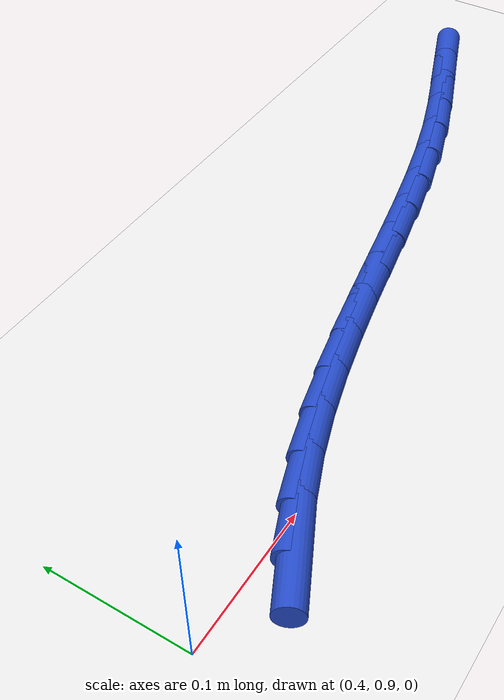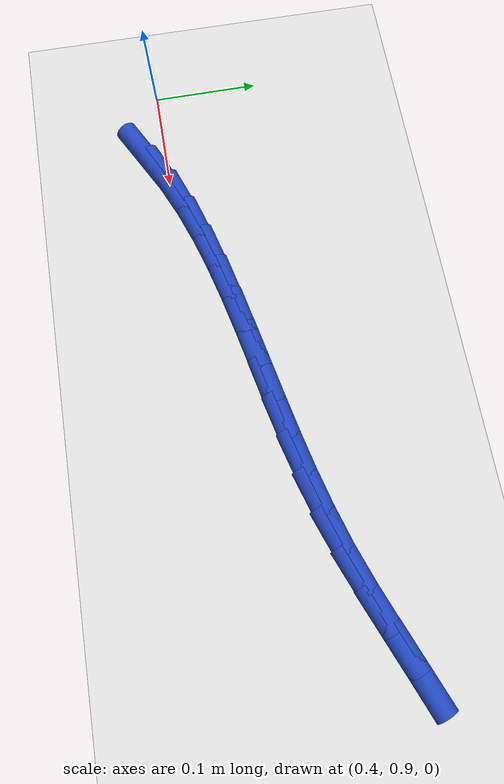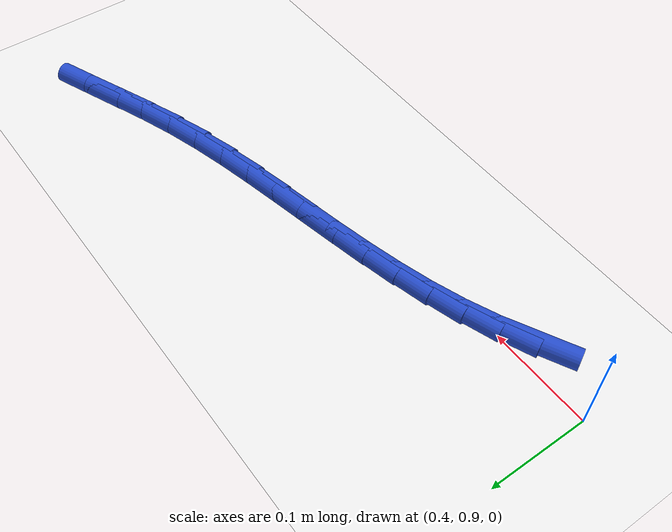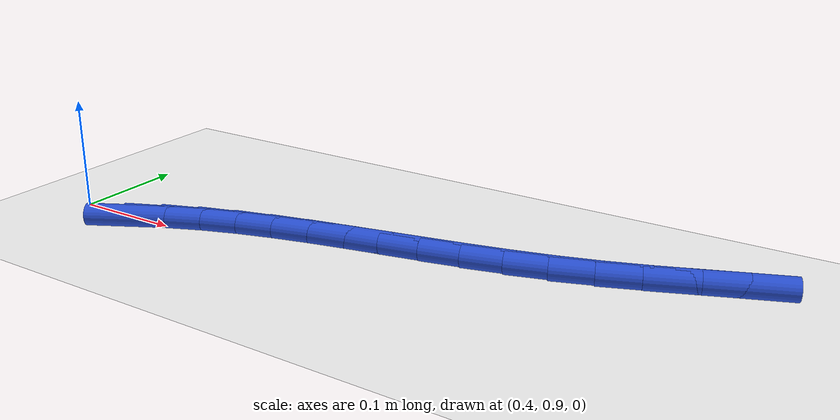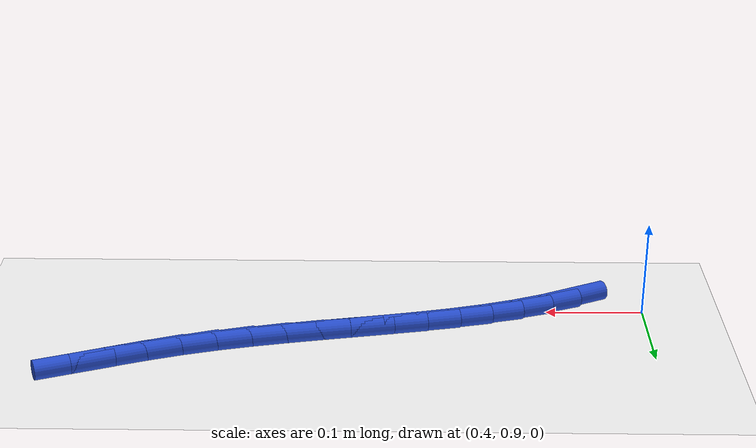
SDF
<sdf version="1.6">
 <world name="default">
  <model name="ground_plane">
   <static>1</static>
   <link name="link">
    <collision name="collision">
     <geometry><plane><normal>0 0 1</normal><size>100 100</size></plane></geometry>
     <surface><friction><ode><mu>100</mu><mu2>50</mu2></ode></friction></surface>
    </collision>
    <visual name="visual">
     <cast_shadows>0</cast_shadows>
     <geometry><plane><normal>0 0 1</normal><size>100 100</size></plane></geometry>
     <material>
      <script><uri>file://media/materials/scripts/gazebo.material</uri><name>Gazebo/WhiteGlow</name></script>
     </material>
    </visual>
   </link>
  </model>
  <model name="line">
   <link name="link_30">
    <pose>0.47369362126024706 0.8840774413980399 0.01 0 1.57 0.4772093467098694</pose>
    <collision name="collision">
     <geometry><cylinder><radius>0.01</radius><length>0.08</length></cylinder></geometry>
    </collision>
    <visual name="visual">
     <material>
      <script><name>Gazebo/Blue</name><uri>file://media/materials/scripts/gazebo.material</uri></script>
     </material>
     <geometry><cylinder><radius>0.01</radius><length>0.08</length></cylinder></geometry>
    </visual>
   </link>
   <link name="link_31">
    <pose>0.5034063994888788 0.8994409967645567 0.01 0 1.57 0.4002779082120154</pose>
    <collision name="collision">
     <geometry><cylinder><radius>0.01</radius><length>0.08</length></cylinder></geometry>
    </collision>
    <visual name="visual">
     <material>
      <script><name>Gazebo/Blue</name><uri>file://media/materials/scripts/gazebo.material</uri></script>
     </material>
     <geometry><cylinder><radius>0.01</radius><length>0.08</length></cylinder></geometry>
    </visual>
   </link>
   <link name="link_32">
    <pose>0.5341975645971737 0.9124693804925118 0.01 0 1.57 0.33559839236085703</pose>
    <collision name="collision">
     <geometry><cylinder><radius>0.01</radius><length>0.08</length></cylinder></geometry>
    </collision>
    <visual name="visual">
     <material>
      <script><name>Gazebo/Blue</name><uri>file://media/materials/scripts/gazebo.material</uri></script>
     </material>
     <geometry><cylinder><radius>0.01</radius><length>0.08</length></cylinder></geometry>
    </visual>
   </link>
   <link name="link_33">
    <pose>0.5659325323236241 0.9235382885998973 0.01 0 1.57 0.2835985488227313</pose>
    <collision name="collision">
     <geometry><cylinder><radius>0.01</radius><length>0.08</length></cylinder></geometry>
    </collision>
    <visual name="visual">
     <material>
      <script><name>Gazebo/Blue</name><uri>file://media/materials/scripts/gazebo.material</uri></script>
     </material>
     <geometry><cylinder><radius>0.01</radius><length>0.08</length></cylinder></geometry>
    </visual>
   </link>
   <link name="link_34">
    <pose>0.598476712482685 0.9330234357757281 0.01 0 1.57 0.24419653883842143</pose>
    <collision name="collision">
     <geometry><cylinder><radius>0.01</radius><length>0.08</length></cylinder></geometry>
    </collision>
    <visual name="visual">
     <material>
      <script><name>Gazebo/Blue</name><uri>file://media/materials/scripts/gazebo.material</uri></script>
     </material>
     <geometry><cylinder><radius>0.01</radius><length>0.08</length></cylinder></geometry>
    </visual>
   </link>
   <link name="link_35">
    <pose>0.6316955148888105 0.9413005367090175 0.01 0 1.57 0.21705390569500263</pose>
    <collision name="collision">
     <geometry><cylinder><radius>0.01</radius><length>0.08</length></cylinder></geometry>
    </collision>
    <visual name="visual">
     <material>
      <script><name>Gazebo/Blue</name><uri>file://media/materials/scripts/gazebo.material</uri></script>
     </material>
     <geometry><cylinder><radius>0.01</radius><length>0.08</length></cylinder></geometry>
    </visual>
   </link>
   <link name="link_36">
    <pose>0.6654543493564564 0.9487453060887807 0.01 0 1.57 0.2017624870796014</pose>
    <collision name="collision">
     <geometry><cylinder><radius>0.01</radius><length>0.08</length></cylinder></geometry>
    </collision>
    <visual name="visual">
     <material>
      <script><name>Gazebo/Blue</name><uri>file://media/materials/scripts/gazebo.material</uri></script>
     </material>
     <geometry><cylinder><radius>0.01</radius><length>0.08</length></cylinder></geometry>
    </visual>
   </link>
   <link name="link_37">
    <pose>0.6996186257000767 0.9557334586040311 0.01 0 1.57 0.19796023497700035</pose>
    <collision name="collision">
     <geometry><cylinder><radius>0.01</radius><length>0.08</length></cylinder></geometry>
    </collision>
    <visual name="visual">
     <material>
      <script><name>Gazebo/Blue</name><uri>file://media/materials/scripts/gazebo.material</uri></script>
     </material>
     <geometry><cylinder><radius>0.01</radius><length>0.08</length></cylinder></geometry>
    </visual>
   </link>
   <link name="link_38">
    <pose>0.7340537537341263 0.9626407089437834 0.01 0 1.57 0.20538679612878377</pose>
    <collision name="collision">
     <geometry><cylinder><radius>0.01</radius><length>0.08</length></cylinder></geometry>
    </collision>
    <visual name="visual">
     <material>
      <script><name>Gazebo/Blue</name><uri>file://media/materials/scripts/gazebo.material</uri></script>
     </material>
     <geometry><cylinder><radius>0.01</radius><length>0.08</length></cylinder></geometry>
    </visual>
   </link>
   <link name="link_39">
    <pose>0.7686251432730602 0.9698427717970516 0.01 0 1.57 0.22389121268520118</pose>
    <collision name="collision">
     <geometry><cylinder><radius>0.01</radius><length>0.08</length></cylinder></geometry>
    </collision>
    <visual name="visual">
     <material>
      <script><name>Gazebo/Blue</name><uri>file://media/materials/scripts/gazebo.material</uri></script>
     </material>
     <geometry><cylinder><radius>0.01</radius><length>0.08</length></cylinder></geometry>
    </visual>
   </link>
   <link name="link_40">
    <pose>0.8031982041313327 0.97771536185285 0.01 0 1.57 0.25339945433759176</pose>
    <collision name="collision">
     <geometry><cylinder><radius>0.01</radius><length>0.08</length></cylinder></geometry>
    </collision>
    <visual name="visual">
     <material>
      <script><name>Gazebo/Blue</name><uri>file://media/materials/scripts/gazebo.material</uri></script>
     </material>
     <geometry><cylinder><radius>0.01</radius><length>0.08</length></cylinder></geometry>
    </visual>
   </link>
   <link name="link_41">
    <pose>0.8376383461233992 0.9866341938001926 0.01 0 1.57 0.2938444212592218</pose>
    <collision name="collision">
     <geometry><cylinder><radius>0.01</radius><length>0.08</length></cylinder></geometry>
    </collision>
    <visual name="visual">
     <material>
      <script><name>Gazebo/Blue</name><uri>file://media/materials/scripts/gazebo.material</uri></script>
     </material>
     <geometry><cylinder><radius>0.01</radius><length>0.08</length></cylinder></geometry>
    </visual>
   </link>
   <link name="link_42">
    <pose>0.8718109790637136 0.9969749823280936 0.01 0 1.57 0.341421814520982</pose>
    <collision name="collision">
     <geometry><cylinder><radius>0.01</radius><length>0.08</length></cylinder></geometry>
    </collision>
    <visual name="visual">
     <material>
      <script><name>Gazebo/Blue</name><uri>file://media/materials/scripts/gazebo.material</uri></script>
     </material>
     <geometry><cylinder><radius>0.01</radius><length>0.08</length></cylinder></geometry>
    </visual>
   </link>
   <link name="link_43">
    <pose>0.9056024920562179 1.008982371033478 0.01 0 1.57 0.3754263664348554</pose>
    <collision name="collision">
     <geometry><cylinder><radius>0.01</radius><length>0.08</length></cylinder></geometry>
    </collision>
    <visual name="visual">
     <material>
      <script><name>Gazebo/Blue</name><uri>file://media/materials/scripts/gazebo.material</uri></script>
     </material>
     <geometry><cylinder><radius>0.01</radius><length>0.08</length></cylinder></geometry>
    </visual>
   </link>
   <link name="link_44">
    <pose>0.9390190820503159 1.022152486974797 0.01 0 1.57 0.38901049553964784</pose>
    <collision name="collision">
     <geometry><cylinder><radius>0.01</radius><length>0.08</length></cylinder></geometry>
    </collision>
    <visual name="visual">
     <material>
      <script><name>Gazebo/Blue</name><uri>file://media/materials/scripts/gazebo.material</uri></script>
     </material>
     <geometry><cylinder><radius>0.01</radius><length>0.08</length></cylinder></geometry>
    </visual>
   </link>
   <link name="link_45">
    <pose>0.9721094082465269 1.0357161682630451 0.01 0 1.57 0.3821516387229275</pose>
    <collision name="collision">
     <geometry><cylinder><radius>0.01</radius><length>0.08</length></cylinder></geometry>
    </collision>
    <visual name="visual">
     <material>
      <script><name>Gazebo/Blue</name><uri>file://media/materials/scripts/gazebo.material</uri></script>
     </material>
     <geometry><cylinder><radius>0.01</radius><length>0.08</length></cylinder></geometry>
    </visual>
   </link>
  </model>
 </world>
</sdf>
